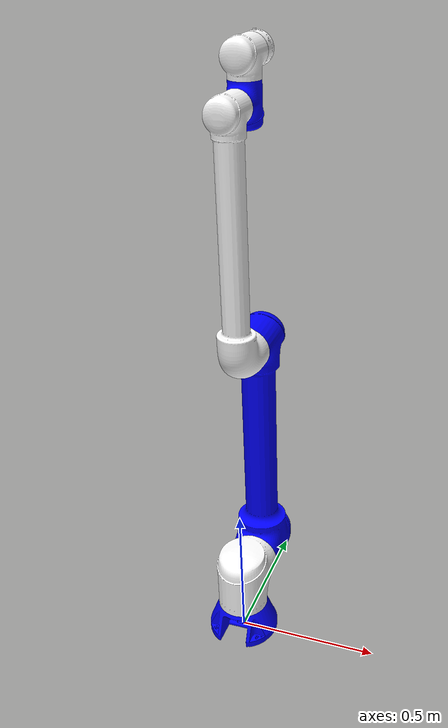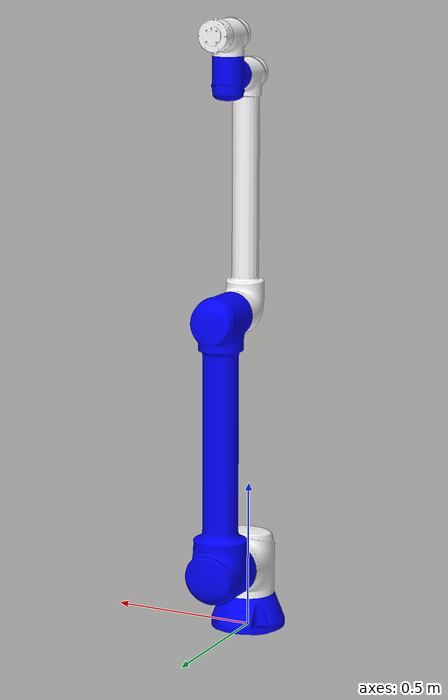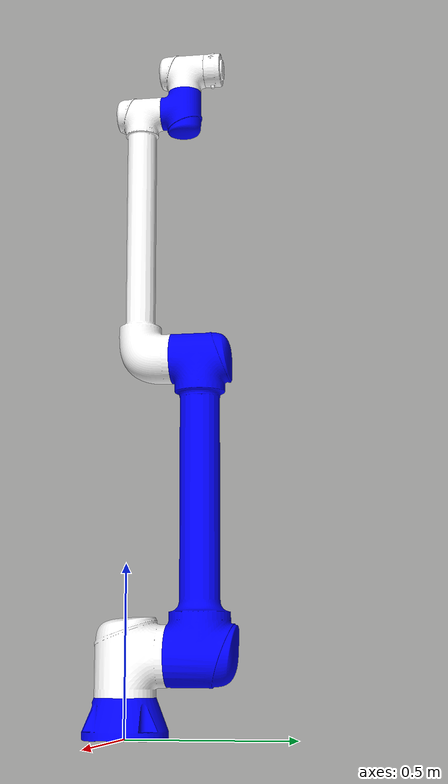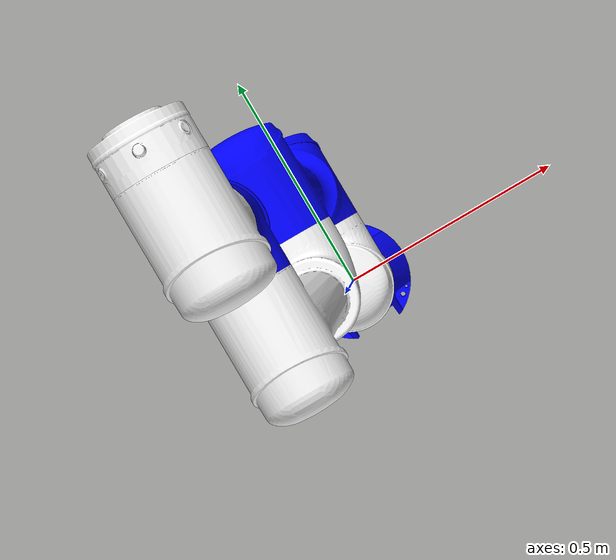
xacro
<?xml version="1.0"?>

<robot name="gcr25" xmlns:xacro="http://ros.org/wiki/xacro" >

    <!-- 构建基座 -->
    <link name="base_link">

        <visual>
            <origin xyz="0 0 0" rpy="0 0 0" />
            <geometry>
                <mesh filename="package:// gcr25/meshes/base_link.STL" />
            </geometry>
            <material name="Blue">
                <color rgba="0 0 1 1" />
            </material>
        </visual>

        <collision>
            <origin xyz="0 0 0" rpy="0 0 0" />
            <geometry>
                <mesh filename="package:// gcr25/meshes/base_link.STL" />
            </geometry>
        </collision>
    </link>

    <!-- 构建关节一 -->
    <link name="link_1">
        <inertial>
            <origin xyz="-0.02683 -2.3767E-07 0.12404" rpy="0 0 0" />
            <mass value="2.169" />
            <inertia
                ixx="0.0056878"
                ixy="-2.4292E-08"
                ixz="0.00044566"
                iyy="0.0044243"
                iyz="-2.2338E-09"
                izz="0.0070499" />
        </inertial>
        <visual>
            <origin xyz="0 0 0" rpy="0 0 0" />
            <geometry>
                <mesh filename="package:// gcr25/meshes/link_1.STL" />
            </geometry>
            <material name="While">
                <color rgba="1 1 1 0.95" />
            </material>
        </visual>

        <collision>
            <origin xyz="0 0 0" rpy="0 0 0" />
            <geometry>
                <mesh filename="package:// gcr25/meshes/link_1.STL" />
            </geometry>
        </collision>
    </link>

    <joint name="joint_1" type="revolute">
        <origin xyz="0 0 0.1176" rpy="0 0 -1.5708" />
        <parent link="base_link" />
        <child link="link_1" />
        <axis xyz="0 0 -1" />
        <limit lower="-3.14159265" upper="3.14159265" effort="0" velocity="0" />
    </joint>

    <!-- 构建关节二 -->
    <link name="link_2">
        <inertial>
            <origin xyz="-1.2208E-05 0.034892 0.14451" rpy="0 0 0" />
            <mass value="1.5329" />
            <inertia
                ixx="0.0031036"
                ixy="2.4292E-08"
                ixz="-2.2338E-09"
                iyy="0.0042948"
                iyz="-0.00044566"
                izz="0.0045458" />
        </inertial>

        <visual>
            <origin xyz="0 0 0" rpy="0 0 0" />
            <geometry>
                <mesh filename="package:// gcr25/meshes/link_2.STL" />
            </geometry>
            <material name="Blue">
                <color rgba="0 0 1 1" />
            </material>
        </visual>

        <collision>
            <origin xyz="0 0 0" rpy="0 0 0" />
            <geometry>
                <mesh filename="package:// gcr25/meshes/link_2.STL" />
            </geometry>
        </collision>
    </link>

    <joint name="joint_2" type="revolute">
        <origin xyz="-0.1239 -1.1872E-05 0.11741" rpy="1.5708 0 -1.5708" />
        <parent link="link_1" />
        <child link="link_2" />
        <axis xyz="0 0 -1" />
        <limit lower="-3.14159265" upper="3.14159265" effort="0" velocity="0" />
    </joint>

    <!-- 构建关节三 -->
    <link name="link_3">
        <inertial>
            <origin xyz="4.5765E-05 3.4016E-05 0.01025" rpy="0 0 0" />
            <mass value="0.36226" />
            <inertia
                ixx="0.00052212"
                ixy="-3.3491E-36"
                ixz="1.1759E-22"
                iyy="0.00052212"
                iyz="2.5908E-19"
                izz="0.0010189" />
        </inertial>

        <visual>
            <origin xyz="0 0 0" rpy="0 0 0" />
            <geometry>
                <mesh filename="package:// gcr25/meshes/link_3.STL" />
            </geometry>
            <material name="While">
                <color rgba="1 1 1 0.95" />
            </material>
        </visual>

        <collision>
            <origin xyz="0 0 0" rpy="0 0 0" />
            <geometry>
                <mesh filename="package:// gcr25/meshes/link_3.STL" />
            </geometry>
        </collision>
    </link>

    <joint name="joint_3" type="revolute">
        <origin xyz="3.3893E-05 0.87746 0.0094" rpy="-3.1416 0 3.1416" />
        <parent link="link_2" />
        <child link="link_3" />
        <axis xyz="0 0 -1" />
        <limit lower="-3.14159265" upper="3.14159265" effort="0" velocity="0" />
    </joint>

    <!-- 构建关节四 -->
    <link name="link_4">
        <inertial>
            <origin xyz="2.7617E-05 0.02981 0.053971" rpy="0 0 0" />
            <mass value="0.040949" />
            <inertia
                ixx="0.00011443"
                ixy="5.5779E-08"
                ixz="1.9935E-08"
                iyy="0.00010143"
                iyz="-2.2071E-05"
                izz="9.7333E-05" />
        </inertial>

        <visual>
            <origin xyz="0 0 0" rpy="0 0 0" />
            <geometry>
                <mesh filename="package:// gcr25/meshes/link_4.STL" />
            </geometry>
            <material name="Blue">
                <color rgba="0 0 1 1" />
            </material>
        </visual>

        <collision>
            <origin xyz="0 0 0" rpy="0 0 0" />
            <geometry>
                <mesh filename="package:// gcr25/meshes/link_4.STL" />
            </geometry>
        </collision>
    </link>

    <joint name="joint_4" type="revolute">
        <origin xyz="4.9923E-05 0.78805 0.0335" rpy="3.1416 0 3.1416" />
        <parent link="link_3" />
        <child link="link_4" />
        <axis xyz="0 0 -1" />
        <limit lower="-3.14159265" upper="3.14159265" effort="0" velocity="0" />
    </joint>

    <!-- 构建关节五 -->
    <link name="link_5">
        <inertial>
            <origin xyz="-0.02983 2.336E-05 0.053971" rpy="0 0 0" />
            <mass value="0.040949" />
            <inertia
                ixx="0.00010143"
                ixy="-5.6111E-08"
                ixz="2.2071E-05"
                iyy="0.00011443"
                iyz="1.9838E-08"
                izz="9.7332E-05" />
        </inertial>

        <visual>
            <origin xyz="0 0 0" rpy="0 0 0" />
            <geometry>
                <mesh filename="package:// gcr25/meshes/link_5.STL" />
            </geometry>
            <material name="While">
                <color rgba="1 1 1 0.95" />
            </material>
        </visual>

        <collision>
            <origin xyz="0 0 0" rpy="0 0 0" />
            <geometry>
                <mesh filename="package:// gcr25/meshes/link_5.STL" />
            </geometry>
        </collision>
    </link>

    <joint name="joint_5" type="revolute">
        <origin xyz="0 0.06498 0.0695" rpy="-1.5708 1.5708 0" />
        <parent link="link_4" />
        <child link="link_5" />
        <axis xyz="0 0 -1" />
        <limit lower="-3.14159265" upper="3.14159265" effort="0" velocity="0" />
    </joint>

    <!-- 构建关节六 -->
    <link name="link_6">
        <inertial>
            <origin xyz="-4.544E-06 -0.00011522 0.049206" rpy="0 0 0" />
            <mass value="0.040524" />
            <inertia
                ixx="1.4137E-05"
                ixy="-4.625E-19"
                ixz="8.9256E-20"
                iyy="1.4256E-05"
                iyz="1.6648E-08"
                izz="2.7195E-05" />
        </inertial>

        <visual>
            <origin xyz="0 0 0" rpy="0 0 0" />
            <geometry>
                <mesh filename="package:// gcr25/meshes/link_6.STL" />
            </geometry>
            <material name="While">
                <color rgba="1 1 1 0.95" />
            </material>
        </visual>

        <collision>
            <origin xyz="0 0 0" rpy="0 0 0" />
            <geometry>
                <mesh filename="package:// gcr25/meshes/link_6.STL" />
            </geometry>
        </collision>
    </link>

    <joint name="joint_6" type="revolute">
        <origin xyz="-0.065 0 0.069499" rpy="1.5708 0 -1.5708" />
        <parent link="link_5" />
        <child link="link_6" />
        <axis xyz="0 0 -1" />
        <limit lower="-3.14159265" upper="3.14159265" effort="0" velocity="0" />
    </joint>

</robot>
